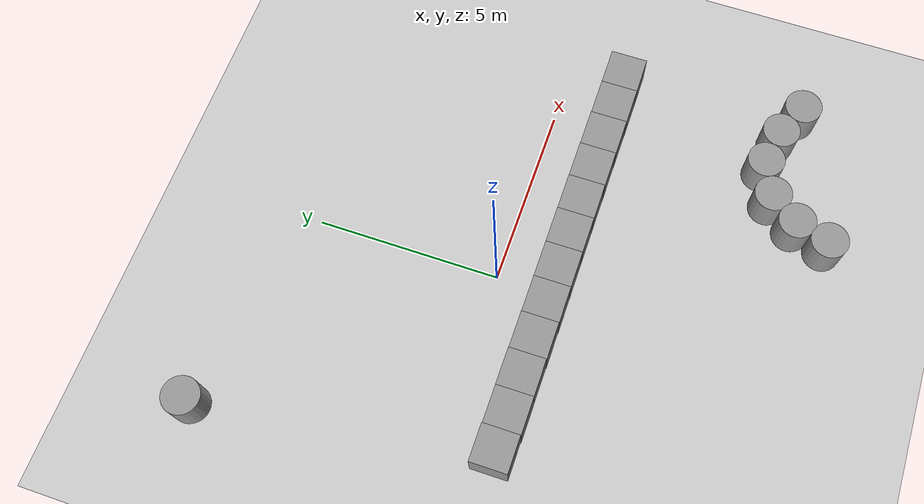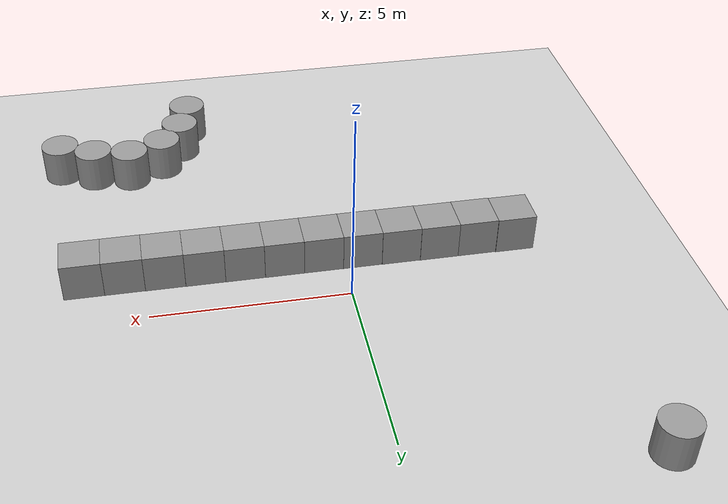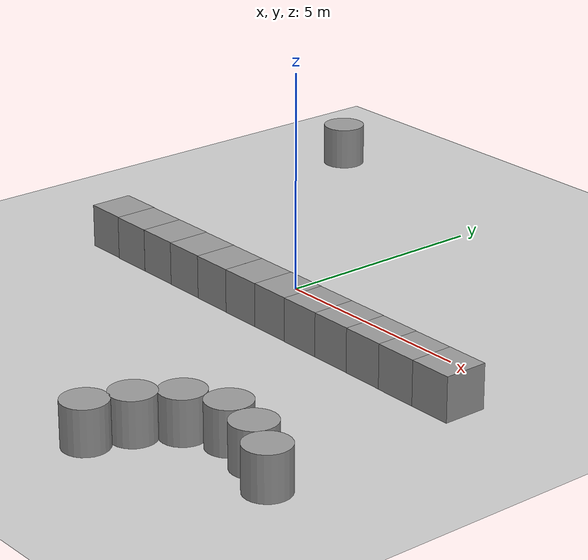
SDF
<sdf version="1.7">
 <world name="default">
  <scene><shadows>0</shadows><ambient>0.8 0.8 0.8 1</ambient><background>0.7 0.7 0.7 1</background></scene>
  <physics type="ode">
   <real_time_update_rate>300</real_time_update_rate>
   <max_step_size>0.00333333</max_step_size>
   <real_time_factor>1</real_time_factor>
  </physics>
  <gravity>0 0 -9.81</gravity>
  <model name="ground_plane">
   <static>1</static>
   <link name="link">
    <collision name="collision">
     <geometry><plane><normal>0 0 1</normal><size>100 100</size></plane></geometry>
     <surface><friction><ode><mu>100</mu><mu2>50</mu2></ode></friction></surface>
    </collision>
    <visual name="visual">
     <cast_shadows>0</cast_shadows>
     <geometry><plane><normal>0 0 1</normal><size>100 100</size></plane></geometry>
     <material>
      <script><uri>file://media/materials/scripts/gazebo.material</uri><name>Gazebo/Grey</name></script>
     </material>
    </visual>
   </link>
  </model>
  <light name="sun" type="directional">
   <pose>0 0 10 0 -0 0</pose>
   <diffuse>0.8 0.8 0.8 1</diffuse>
   <specular>0.2 0.2 0.2 1</specular>
   <attenuation>
    <range>1000</range>
    <constant>0.9</constant>
    <linear>0.01</linear>
    <quadratic>0.001</quadratic>
   </attenuation>
   <direction>-0.5 0.1 -0.9</direction>
   <spot><inner_angle>0</inner_angle><outer_angle>0</outer_angle><falloff>0</falloff></spot>
  </light>
  <magnetic_field>6e-06 2.3e-05 -4.2e-05</magnetic_field>
  <atmosphere type="adiabatic"/>
  <audio><device>default</device></audio>
  <spherical_coordinates>
   <surface_model>EARTH_WGS84</surface_model>
   <latitude_deg>0</latitude_deg>
   <longitude_deg>0</longitude_deg>
   <elevation>0</elevation>
   <heading_deg>0</heading_deg>
  </spherical_coordinates>
  <model name="unit_cylinder">
   <static>1</static>
   <pose>3.37986 -7.96936 0.499924 0 0 -0.009238</pose>
   <link name="link">
    <inertial>
     <mass>1</mass>
     <inertia><ixx>0.145833</ixx><ixy>0</ixy><ixz>0</ixz><iyy>0.145833</iyy><iyz>0</iyz><izz>0.125</izz></inertia>
    </inertial>
    <collision name="collision">
     <geometry><cylinder><radius>0.5</radius><length>1</length></cylinder></geometry>
    </collision>
    <visual name="visual">
     <geometry><cylinder><radius>0.5</radius><length>1</length></cylinder></geometry>
     <material>
      <script><name>Gazebo/Grey</name><uri>file://media/materials/scripts/gazebo.material</uri></script>
     </material>
    </visual>
   </link>
  </model>
  <model name="unit_cylinder_clone">
   <static>1</static>
   <pose>3.65957 -7.04938 0.499924 0 -0 0.000595</pose>
   <link name="link">
    <inertial>
     <mass>1</mass>
     <inertia><ixx>0.145833</ixx><ixy>0</ixy><ixz>0</ixz><iyy>0.145833</iyy><iyz>0</iyz><izz>0.125</izz></inertia>
    </inertial>
    <collision name="collision">
     <geometry><cylinder><radius>0.5</radius><length>1</length></cylinder></geometry>
    </collision>
    <visual name="visual">
     <geometry><cylinder><radius>0.5</radius><length>1</length></cylinder></geometry>
     <material>
      <script><name>Gazebo/Grey</name><uri>file://media/materials/scripts/gazebo.material</uri></script>
     </material>
    </visual>
   </link>
  </model>
  <model name="unit_cylinder_clone_0">
   <static>1</static>
   <pose>4.21836 -6.27433 0.499924 0 -0 0.011405</pose>
   <link name="link">
    <inertial>
     <mass>1</mass>
     <inertia><ixx>0.145833</ixx><ixy>0</ixy><ixz>0</ixz><iyy>0.145833</iyy><iyz>0</iyz><izz>0.125</izz></inertia>
    </inertial>
    <collision name="collision">
     <geometry><cylinder><radius>0.5</radius><length>1</length></cylinder></geometry>
    </collision>
    <visual name="visual">
     <geometry><cylinder><radius>0.5</radius><length>1</length></cylinder></geometry>
     <material>
      <script><name>Gazebo/Grey</name><uri>file://media/materials/scripts/gazebo.material</uri></script>
     </material>
    </visual>
   </link>
  </model>
  <model name="unit_cylinder_clone_1">
   <static>1</static>
   <pose>5.13174 -5.86722 0.499924 0 -0 0.003983</pose>
   <link name="link">
    <inertial>
     <mass>1</mass>
     <inertia><ixx>0.145833</ixx><ixy>0</ixy><ixz>0</ixz><iyy>0.145833</iyy><iyz>0</iyz><izz>0.125</izz></inertia>
    </inertial>
    <collision name="collision">
     <geometry><cylinder><radius>0.5</radius><length>1</length></cylinder></geometry>
    </collision>
    <visual name="visual">
     <geometry><cylinder><radius>0.5</radius><length>1</length></cylinder></geometry>
     <material>
      <script><name>Gazebo/Grey</name><uri>file://media/materials/scripts/gazebo.material</uri></script>
     </material>
    </visual>
   </link>
  </model>
  <model name="unit_cylinder_clone_2">
   <static>1</static>
   <pose>6.11541 -6.04762 0.499924 0 0 -0.013957</pose>
   <link name="link">
    <inertial>
     <mass>1</mass>
     <inertia><ixx>0.145833</ixx><ixy>0</ixy><ixz>0</ixz><iyy>0.145833</iyy><iyz>0</iyz><izz>0.125</izz></inertia>
    </inertial>
    <collision name="collision">
     <geometry><cylinder><radius>0.5</radius><length>1</length></cylinder></geometry>
    </collision>
    <visual name="visual">
     <geometry><cylinder><radius>0.5</radius><length>1</length></cylinder></geometry>
     <material>
      <script><name>Gazebo/Grey</name><uri>file://media/materials/scripts/gazebo.material</uri></script>
     </material>
    </visual>
   </link>
  </model>
  <model name="unit_cylinder_clone_3">
   <static>1</static>
   <pose>7.01296 -6.4507 0.499924 0 -0 0</pose>
   <link name="link">
    <inertial>
     <mass>1</mass>
     <inertia><ixx>0.145833</ixx><ixy>0</ixy><ixz>0</ixz><iyy>0.145833</iyy><iyz>0</iyz><izz>0.125</izz></inertia>
    </inertial>
    <collision name="collision">
     <geometry><cylinder><radius>0.5</radius><length>1</length></cylinder></geometry>
    </collision>
    <visual name="visual">
     <geometry><cylinder><radius>0.5</radius><length>1</length></cylinder></geometry>
     <material>
      <script><name>Gazebo/Grey</name><uri>file://media/materials/scripts/gazebo.material</uri></script>
     </material>
    </visual>
   </link>
  </model>
  <model name="unit_box">
   <static>1</static>
   <pose>-4.46744 -1.4652 0.5 0 -0 0.001626</pose>
   <link name="link">
    <inertial>
     <mass>1</mass>
     <inertia>
      <ixx>0.166667</ixx>
      <ixy>0</ixy>
      <ixz>0</ixz>
      <iyy>0.166667</iyy>
      <iyz>0</iyz>
      <izz>0.166667</izz>
     </inertia>
    </inertial>
    <collision name="collision"><geometry><box><size>1 1 1</size></box></geometry></collision>
    <visual name="visual">
     <geometry><box><size>1 1 1</size></box></geometry>
     <material>
      <script><name>Gazebo/Grey</name><uri>file://media/materials/scripts/gazebo.material</uri></script>
     </material>
    </visual>
   </link>
  </model>
  <model name="unit_box_clone">
   <static>1</static>
   <pose>-3.46733 -1.48049 0.5 0 -0 0.00166</pose>
   <link name="link">
    <inertial>
     <mass>1</mass>
     <inertia>
      <ixx>0.166667</ixx>
      <ixy>0</ixy>
      <ixz>0</ixz>
      <iyy>0.166667</iyy>
      <iyz>0</iyz>
      <izz>0.166667</izz>
     </inertia>
    </inertial>
    <collision name="collision"><geometry><box><size>1 1 1</size></box></geometry></collision>
    <visual name="visual">
     <geometry><box><size>1 1 1</size></box></geometry>
     <material>
      <script><name>Gazebo/Grey</name><uri>file://media/materials/scripts/gazebo.material</uri></script>
     </material>
    </visual>
   </link>
  </model>
  <model name="unit_box_clone_0">
   <static>1</static>
   <pose>-2.46732 -1.4782 0.5 0 -0 0.001675</pose>
   <link name="link">
    <inertial>
     <mass>1</mass>
     <inertia>
      <ixx>0.166667</ixx>
      <ixy>0</ixy>
      <ixz>0</ixz>
      <iyy>0.166667</iyy>
      <iyz>0</iyz>
      <izz>0.166667</izz>
     </inertia>
    </inertial>
    <collision name="collision"><geometry><box><size>1 1 1</size></box></geometry></collision>
    <visual name="visual">
     <geometry><box><size>1 1 1</size></box></geometry>
     <material>
      <script><name>Gazebo/Grey</name><uri>file://media/materials/scripts/gazebo.material</uri></script>
     </material>
    </visual>
   </link>
  </model>
  <model name="unit_box_clone_1">
   <static>1</static>
   <pose>-1.46724 -1.48627 0.5 0 -0 0.001602</pose>
   <link name="link">
    <inertial>
     <mass>1</mass>
     <inertia>
      <ixx>0.166667</ixx>
      <ixy>0</ixy>
      <ixz>0</ixz>
      <iyy>0.166667</iyy>
      <iyz>0</iyz>
      <izz>0.166667</izz>
     </inertia>
    </inertial>
    <collision name="collision"><geometry><box><size>1 1 1</size></box></geometry></collision>
    <visual name="visual">
     <geometry><box><size>1 1 1</size></box></geometry>
     <material>
      <script><name>Gazebo/Grey</name><uri>file://media/materials/scripts/gazebo.material</uri></script>
     </material>
    </visual>
   </link>
  </model>
  <model name="unit_box_clone_2">
   <static>1</static>
   <pose>-0.467212 -1.49177 0.5 0 -0 0.0016</pose>
   <link name="link">
    <inertial>
     <mass>1</mass>
     <inertia>
      <ixx>0.166667</ixx>
      <ixy>0</ixy>
      <ixz>0</ixz>
      <iyy>0.166667</iyy>
      <iyz>0</iyz>
      <izz>0.166667</izz>
     </inertia>
    </inertial>
    <collision name="collision"><geometry><box><size>1 1 1</size></box></geometry></collision>
    <visual name="visual">
     <geometry><box><size>1 1 1</size></box></geometry>
     <material>
      <script><name>Gazebo/Grey</name><uri>file://media/materials/scripts/gazebo.material</uri></script>
     </material>
    </visual>
   </link>
  </model>
  <model name="unit_box_clone_3">
   <static>1</static>
   <pose>0.532803 -1.49177 0.5 0 -0 0.001582</pose>
   <link name="link">
    <inertial>
     <mass>1</mass>
     <inertia>
      <ixx>0.166667</ixx>
      <ixy>0</ixy>
      <ixz>0</ixz>
      <iyy>0.166667</iyy>
      <iyz>0</iyz>
      <izz>0.166667</izz>
     </inertia>
    </inertial>
    <collision name="collision"><geometry><box><size>1 1 1</size></box></geometry></collision>
    <visual name="visual">
     <geometry><box><size>1 1 1</size></box></geometry>
     <material>
      <script><name>Gazebo/Grey</name><uri>file://media/materials/scripts/gazebo.material</uri></script>
     </material>
    </visual>
   </link>
  </model>
  <model name="unit_box_clone_4">
   <static>1</static>
   <pose>1.53283 -1.49053 0.5 0 -0 0.00158</pose>
   <link name="link">
    <inertial>
     <mass>1</mass>
     <inertia>
      <ixx>0.166667</ixx>
      <ixy>0</ixy>
      <ixz>0</ixz>
      <iyy>0.166667</iyy>
      <iyz>0</iyz>
      <izz>0.166667</izz>
     </inertia>
    </inertial>
    <collision name="collision"><geometry><box><size>1 1 1</size></box></geometry></collision>
    <visual name="visual">
     <geometry><box><size>1 1 1</size></box></geometry>
     <material>
      <script><name>Gazebo/Grey</name><uri>file://media/materials/scripts/gazebo.material</uri></script>
     </material>
    </visual>
   </link>
  </model>
  <model name="unit_box_clone_5">
   <static>1</static>
   <pose>2.53286 -1.494 0.5 0 -0 0.001581</pose>
   <link name="link">
    <inertial>
     <mass>1</mass>
     <inertia>
      <ixx>0.166667</ixx>
      <ixy>0</ixy>
      <ixz>0</ixz>
      <iyy>0.166667</iyy>
      <iyz>0</iyz>
      <izz>0.166667</izz>
     </inertia>
    </inertial>
    <collision name="collision"><geometry><box><size>1 1 1</size></box></geometry></collision>
    <visual name="visual">
     <geometry><box><size>1 1 1</size></box></geometry>
     <material>
      <script><name>Gazebo/Grey</name><uri>file://media/materials/scripts/gazebo.material</uri></script>
     </material>
    </visual>
   </link>
  </model>
  <model name="unit_box_clone_6">
   <static>1</static>
   <pose>3.5329 -1.49607 0.5 0 -0 0.001562</pose>
   <link name="link">
    <inertial>
     <mass>1</mass>
     <inertia>
      <ixx>0.166667</ixx>
      <ixy>0</ixy>
      <ixz>0</ixz>
      <iyy>0.166667</iyy>
      <iyz>0</iyz>
      <izz>0.166667</izz>
     </inertia>
    </inertial>
    <collision name="collision"><geometry><box><size>1 1 1</size></box></geometry></collision>
    <visual name="visual">
     <geometry><box><size>1 1 1</size></box></geometry>
     <material>
      <script><name>Gazebo/Grey</name><uri>file://media/materials/scripts/gazebo.material</uri></script>
     </material>
    </visual>
   </link>
  </model>
  <model name="unit_box_clone_7">
   <static>1</static>
   <pose>4.53294 -1.50081 0.5 0 -0 0.001591</pose>
   <link name="link">
    <inertial>
     <mass>1</mass>
     <inertia>
      <ixx>0.166667</ixx>
      <ixy>0</ixy>
      <ixz>0</ixz>
      <iyy>0.166667</iyy>
      <iyz>0</iyz>
      <izz>0.166667</izz>
     </inertia>
    </inertial>
    <collision name="collision"><geometry><box><size>1 1 1</size></box></geometry></collision>
    <visual name="visual">
     <geometry><box><size>1 1 1</size></box></geometry>
     <material>
      <script><name>Gazebo/Grey</name><uri>file://media/materials/scripts/gazebo.material</uri></script>
     </material>
    </visual>
   </link>
  </model>
  <model name="unit_box_clone_8">
   <static>1</static>
   <pose>5.53295 -1.50646 0.5 0 -0 0.001585</pose>
   <link name="link">
    <inertial>
     <mass>1</mass>
     <inertia>
      <ixx>0.166667</ixx>
      <ixy>0</ixy>
      <ixz>0</ixz>
      <iyy>0.166667</iyy>
      <iyz>0</iyz>
      <izz>0.166667</izz>
     </inertia>
    </inertial>
    <collision name="collision"><geometry><box><size>1 1 1</size></box></geometry></collision>
    <visual name="visual">
     <geometry><box><size>1 1 1</size></box></geometry>
     <material>
      <script><name>Gazebo/Grey</name><uri>file://media/materials/scripts/gazebo.material</uri></script>
     </material>
    </visual>
   </link>
  </model>
  <model name="unit_box_clone_9">
   <static>1</static>
   <pose>6.53296 -1.5053 0.5 0 -0 0.001587</pose>
   <link name="link">
    <inertial>
     <mass>1</mass>
     <inertia>
      <ixx>0.166667</ixx>
      <ixy>0</ixy>
      <ixz>0</ixz>
      <iyy>0.166667</iyy>
      <iyz>0</iyz>
      <izz>0.166667</izz>
     </inertia>
    </inertial>
    <collision name="collision"><geometry><box><size>1 1 1</size></box></geometry></collision>
    <visual name="visual">
     <geometry><box><size>1 1 1</size></box></geometry>
     <material>
      <script><name>Gazebo/Grey</name><uri>file://media/materials/scripts/gazebo.material</uri></script>
     </material>
    </visual>
   </link>
  </model>
  <model name="unit_cylinder_0">
   <static>1</static>
   <pose>-5.6713 6.24015 0.499924 0 -0 0</pose>
   <link name="link">
    <inertial>
     <mass>1</mass>
     <inertia><ixx>0.145833</ixx><ixy>0</ixy><ixz>0</ixz><iyy>0.145833</iyy><iyz>0</iyz><izz>0.125</izz></inertia>
    </inertial>
    <collision name="collision">
     <geometry><cylinder><radius>0.5</radius><length>1</length></cylinder></geometry>
    </collision>
    <visual name="visual">
     <geometry><cylinder><radius>0.5</radius><length>1</length></cylinder></geometry>
     <material>
      <script><name>Gazebo/Grey</name><uri>file://media/materials/scripts/gazebo.material</uri></script>
     </material>
    </visual>
   </link>
  </model>
  <light name="user_spot_light_0" type="spot">
   <pose>6.27553 -8.98436 1 0 -0 0</pose>
   <diffuse>0.5 0.5 0.5 1</diffuse>
   <specular>0.1 0.1 0.1 1</specular>
   <direction>0 0 -1</direction>
   <attenuation>
    <range>20</range>
    <constant>0.5</constant>
    <linear>0.01</linear>
    <quadratic>0.001</quadratic>
   </attenuation>
   <cast_shadows>0</cast_shadows>
   <spot><inner_angle>0.6</inner_angle><outer_angle>1</outer_angle><falloff>1</falloff></spot>
  </light>
  <light name="user_spot_light_1" type="spot">
   <pose>-8.65364 8.61971 1 0 -0 0</pose>
   <diffuse>0.5 0.5 0.5 1</diffuse>
   <specular>0.1 0.1 0.1 1</specular>
   <direction>0 0 -1</direction>
   <attenuation>
    <range>20</range>
    <constant>0.5</constant>
    <linear>0.01</linear>
    <quadratic>0.001</quadratic>
   </attenuation>
   <cast_shadows>0</cast_shadows>
   <spot><inner_angle>0.6</inner_angle><outer_angle>1</outer_angle><falloff>1</falloff></spot>
  </light>
 </world>
</sdf>
